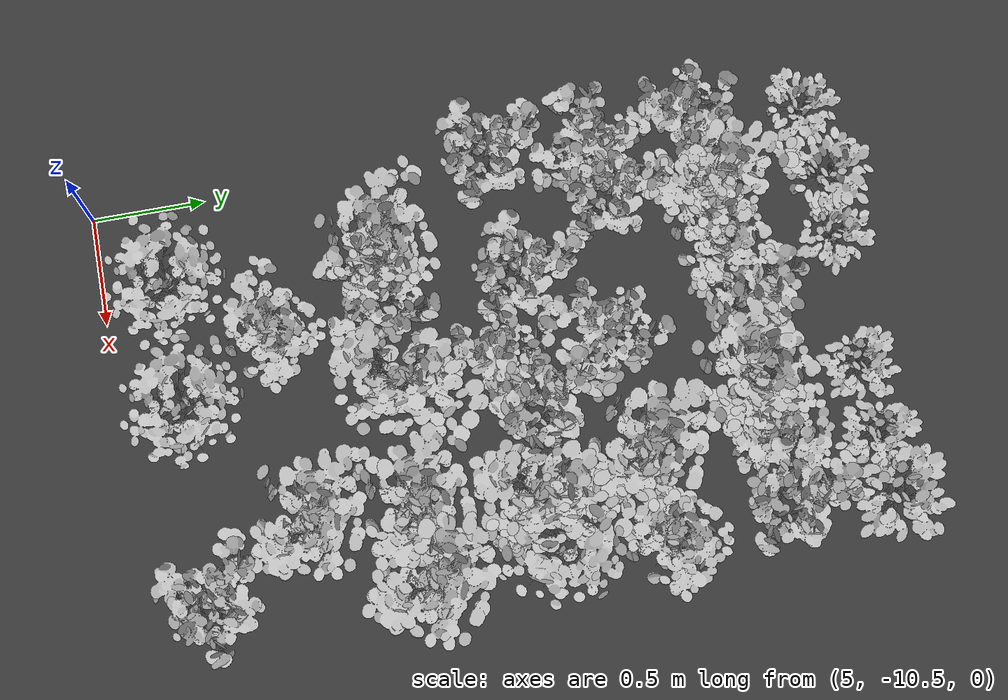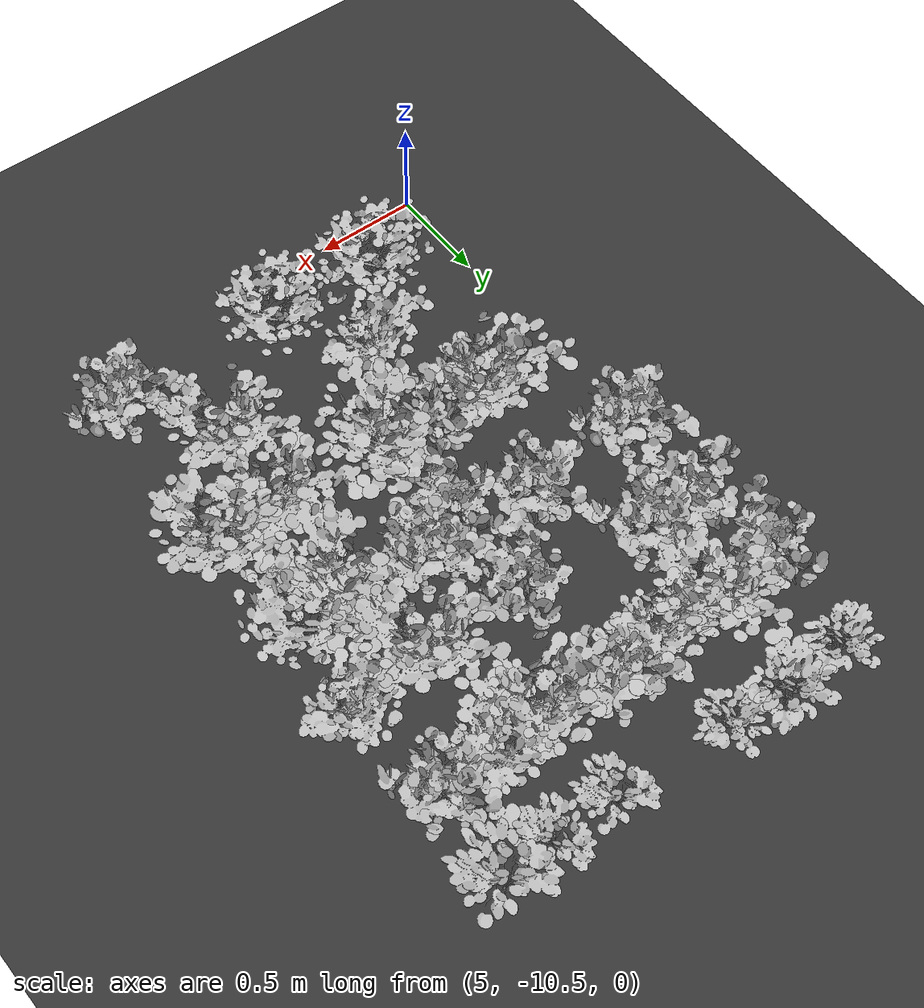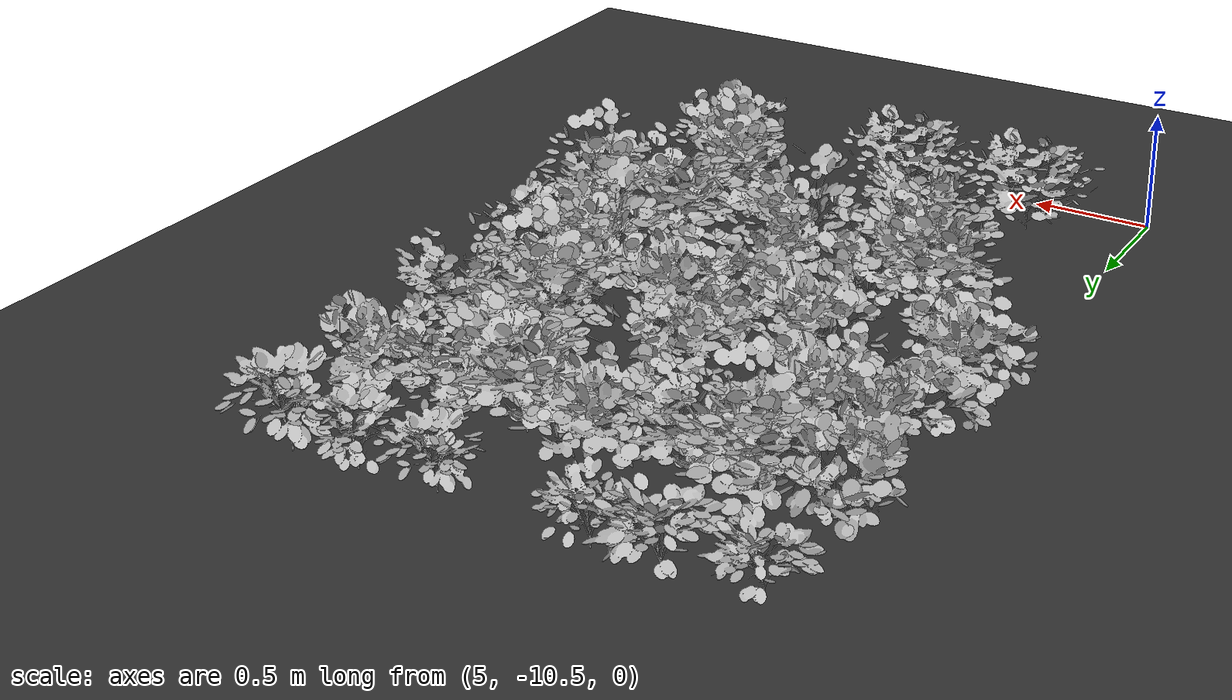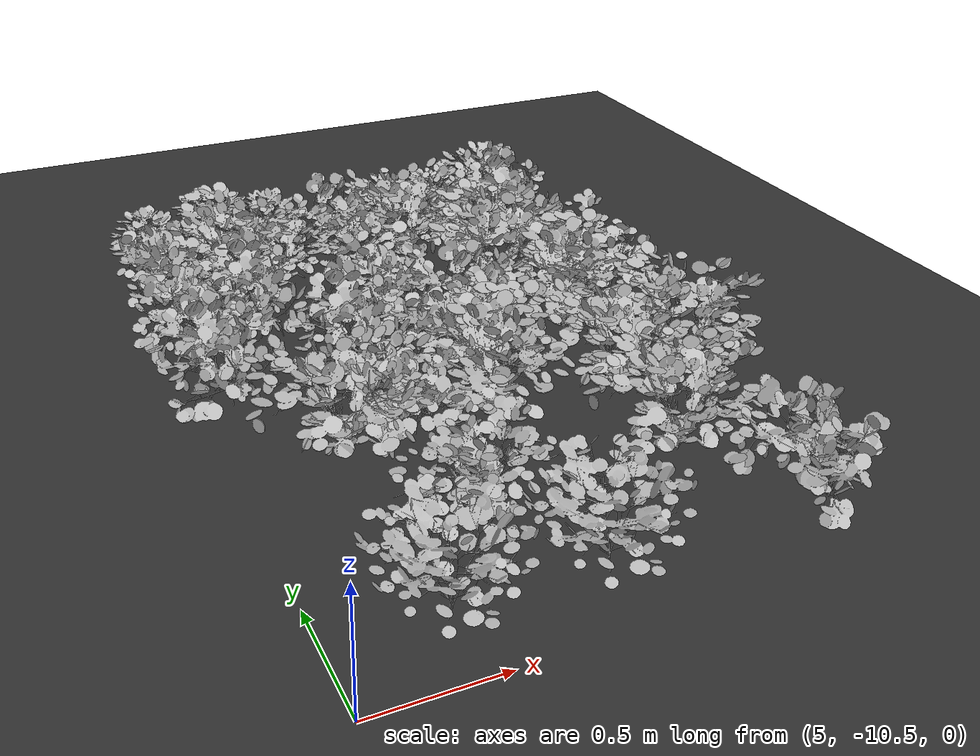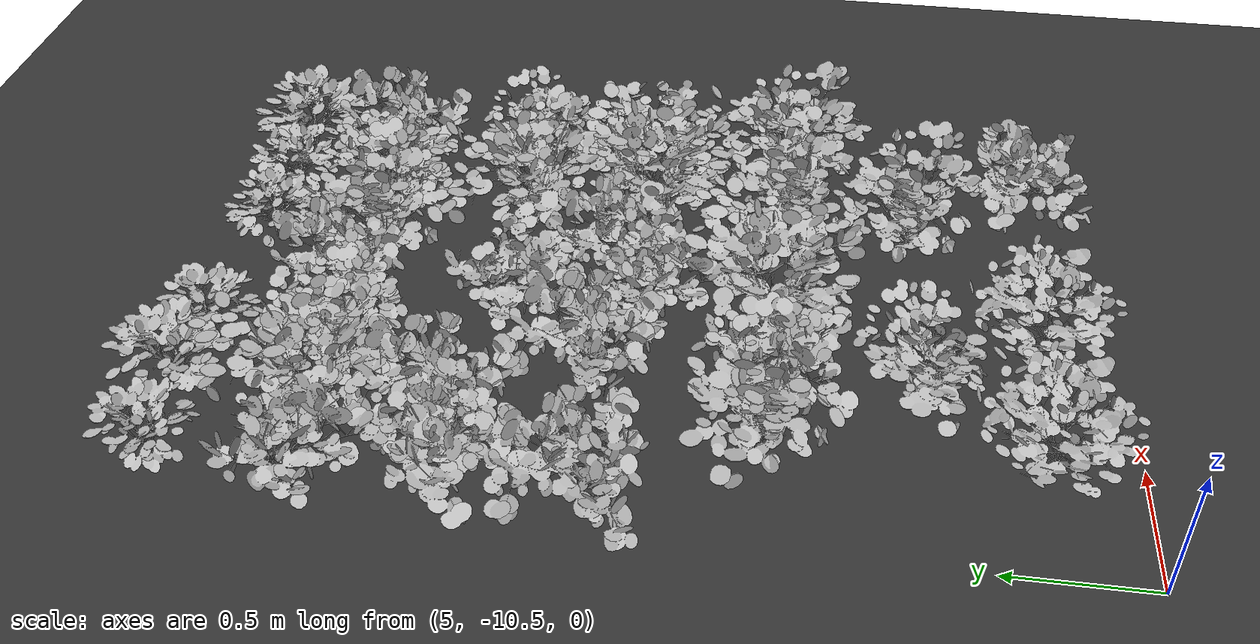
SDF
<sdf version="1.7">
 <world name="default">
  <model name="ground_plane">
   <static>1</static>
   <link name="link">
    <collision name="collision">
     <geometry><plane><normal>0 0 1</normal><size>100 100</size></plane></geometry>
     <surface>
      <contact><collide_bitmask>65535</collide_bitmask></contact>
      <friction><ode><mu>100</mu><mu2>50</mu2></ode></friction>
     </surface>
    </collision>
    <visual name="visual">
     <cast_shadows>0</cast_shadows>
     <geometry><plane><normal>0 0 1</normal><size>100 100</size></plane></geometry>
     <material>
      <ambient>0.2 0.2 0.2 1.0</ambient>
      <diffuse>0.2 0.2 0.2 1.0</diffuse>
      <specular>0.2 0.2 0.2 1.0</specular>
      <emissive>0.2 0.2 0.2 1.0</emissive>
     </material>
    </visual>
   </link>
  </model>
  <model name="ground">
   <pose>5 -0.5 0.01  3.141592654 0 0</pose>
   <static>true</static>
   <link name="body">
    <visual name="visual">
     <cast_shadows>0</cast_shadows>
     <geometry>
      <mesh><uri>file:///home/ifcosta/catkin_ws/src/cnn_line/worlds/models/ground.obj</uri></mesh>
     </geometry>
    </visual>
   </link>
  </model>
  <model name="plt_20017">
   <pose>5.09 -7.28 0.0143 0.0 0.0 -0.16303</pose>
   <static>true</static>
   <link name="body">
    <visual name="visual">
     <geometry>
      <mesh><uri>file:///home/ifcosta/catkin_ws/src/cnn_line/worlds/models/plant20.obj</uri></mesh>
     </geometry>
    </visual>
   </link>
  </model>
  <model name="plt_20018">
   <pose>5.43 -7.24 0.0139 0.0 0.0 1.0683</pose>
   <static>true</static>
   <link name="body">
    <visual name="visual">
     <geometry>
      <mesh><uri>file:///home/ifcosta/catkin_ws/src/cnn_line/worlds/models/plant21.obj</uri></mesh>
     </geometry>
    </visual>
   </link>
  </model>
  <model name="plt_30018">
   <pose>5.43 -10.2 0.0139 0.0 0.0 -0.18244</pose>
   <static>true</static>
   <link name="body">
    <visual name="visual">
     <geometry>
      <mesh><uri>file:///home/ifcosta/catkin_ws/src/cnn_line/worlds/models/plant35.obj</uri></mesh>
     </geometry>
    </visual>
   </link>
  </model>
  <model name="plt_20019">
   <pose>5.7 -7.26 0.0103 0.0 0.0 -0.6353</pose>
   <static>true</static>
   <link name="body">
    <visual name="visual">
     <geometry>
      <mesh><uri>file:///home/ifcosta/catkin_ws/src/cnn_line/worlds/models/plant20.obj</uri></mesh>
     </geometry>
    </visual>
   </link>
  </model>
  <model name="plt_30020">
   <pose>5.99 -10.2 0.0155 0.0 0.0 -0.10575</pose>
   <static>true</static>
   <link name="body">
    <visual name="visual">
     <geometry>
      <mesh><uri>file:///home/ifcosta/catkin_ws/src/cnn_line/worlds/models/plant35.obj</uri></mesh>
     </geometry>
    </visual>
   </link>
  </model>
  <model name="plt_20021">
   <pose>6.31 -7.28 0.0148 0.0 0.0 -1.3733</pose>
   <static>true</static>
   <link name="body">
    <visual name="visual">
     <geometry>
      <mesh><uri>file:///home/ifcosta/catkin_ws/src/cnn_line/worlds/models/plant20.obj</uri></mesh>
     </geometry>
    </visual>
   </link>
  </model>
  <model name="plt_20022">
   <pose>6.63 -7.27 0.0137 0.0 0.0 -1.9299</pose>
   <static>true</static>
   <link name="body">
    <visual name="visual">
     <geometry>
      <mesh><uri>file:///home/ifcosta/catkin_ws/src/cnn_line/worlds/models/plant20.obj</uri></mesh>
     </geometry>
    </visual>
   </link>
  </model>
  <model name="plt_20023">
   <pose>6.9 -7.25 0.0141 0.0 0.0 0.044499</pose>
   <static>true</static>
   <link name="body">
    <visual name="visual">
     <geometry>
      <mesh><uri>file:///home/ifcosta/catkin_ws/src/cnn_line/worlds/models/plant22.obj</uri></mesh>
     </geometry>
    </visual>
   </link>
  </model>
  <model name="plt_30023">
   <pose>6.9 -10.2 0.0141 0.0 0.0 0.03837</pose>
   <static>true</static>
   <link name="body">
    <visual name="visual">
     <geometry>
      <mesh><uri>file:///home/ifcosta/catkin_ws/src/cnn_line/worlds/models/plant33.obj</uri></mesh>
     </geometry>
    </visual>
   </link>
  </model>
  <model name="plt_30053">
   <pose>5.73 -9.78 0.0159 0.0 0.0 -0.35968</pose>
   <static>true</static>
   <link name="body">
    <visual name="visual">
     <geometry>
      <mesh><uri>file:///home/ifcosta/catkin_ws/src/cnn_line/worlds/models/plant31.obj</uri></mesh>
     </geometry>
    </visual>
   </link>
  </model>
  <model name="plt_30056">
   <pose>6.57 -9.73 0.0154 0.0 0.0 -0.071339</pose>
   <static>true</static>
   <link name="body">
    <visual name="visual">
     <geometry>
      <mesh><uri>file:///home/ifcosta/catkin_ws/src/cnn_line/worlds/models/plant36.obj</uri></mesh>
     </geometry>
    </visual>
   </link>
  </model>
  <model name="plt_30086">
   <pose>5.43 -9.25 0.0145 0.0 0.0 0.3714</pose>
   <static>true</static>
   <link name="body">
    <visual name="visual">
     <geometry>
      <mesh><uri>file:///home/ifcosta/catkin_ws/src/cnn_line/worlds/models/plant36.obj</uri></mesh>
     </geometry>
    </visual>
   </link>
  </model>
  <model name="plt_30087">
   <pose>5.71 -9.24 0.0154 0.0 0.0 1.2879</pose>
   <static>true</static>
   <link name="body">
    <visual name="visual">
     <geometry>
      <mesh><uri>file:///home/ifcosta/catkin_ws/src/cnn_line/worlds/models/plant33.obj</uri></mesh>
     </geometry>
    </visual>
   </link>
  </model>
  <model name="plt_30088">
   <pose>6.03 -9.25 0.0131 0.0 0.0 -2.0075</pose>
   <static>true</static>
   <link name="body">
    <visual name="visual">
     <geometry>
      <mesh><uri>file:///home/ifcosta/catkin_ws/src/cnn_line/worlds/models/plant30.obj</uri></mesh>
     </geometry>
    </visual>
   </link>
  </model>
  <model name="plt_30090">
   <pose>6.59 -9.28 0.0144 0.0 0.0 0.239</pose>
   <static>true</static>
   <link name="body">
    <visual name="visual">
     <geometry>
      <mesh><uri>file:///home/ifcosta/catkin_ws/src/cnn_line/worlds/models/plant36.obj</uri></mesh>
     </geometry>
    </visual>
   </link>
  </model>
  <model name="plt_30091">
   <pose>6.91 -9.25 0.0156 0.0 0.0 -1.0219</pose>
   <static>true</static>
   <link name="body">
    <visual name="visual">
     <geometry>
      <mesh><uri>file:///home/ifcosta/catkin_ws/src/cnn_line/worlds/models/plant30.obj</uri></mesh>
     </geometry>
    </visual>
   </link>
  </model>
  <model name="plt_30119">
   <pose>5.12 -8.76 0.0183 0.0 0.0 -0.43453</pose>
   <static>true</static>
   <link name="body">
    <visual name="visual">
     <geometry>
      <mesh><uri>file:///home/ifcosta/catkin_ws/src/cnn_line/worlds/models/plant33.obj</uri></mesh>
     </geometry>
    </visual>
   </link>
  </model>
  <model name="plt_30121">
   <pose>5.67 -8.72 0.0171 0.0 0.0 -0.76381</pose>
   <static>true</static>
   <link name="body">
    <visual name="visual">
     <geometry>
      <mesh><uri>file:///home/ifcosta/catkin_ws/src/cnn_line/worlds/models/plant33.obj</uri></mesh>
     </geometry>
    </visual>
   </link>
  </model>
  <model name="plt_30122">
   <pose>6.03 -8.74 0.0143 0.0 0.0 0.39181</pose>
   <static>true</static>
   <link name="body">
    <visual name="visual">
     <geometry>
      <mesh><uri>file:///home/ifcosta/catkin_ws/src/cnn_line/worlds/models/plant34.obj</uri></mesh>
     </geometry>
    </visual>
   </link>
  </model>
  <model name="plt_30123">
   <pose>6.3 -8.72 0.0143 0.0 0.0 -0.25647</pose>
   <static>true</static>
   <link name="body">
    <visual name="visual">
     <geometry>
      <mesh><uri>file:///home/ifcosta/catkin_ws/src/cnn_line/worlds/models/plant33.obj</uri></mesh>
     </geometry>
    </visual>
   </link>
  </model>
  <model name="plt_30124">
   <pose>6.63 -8.74 0.0152 0.0 0.0 -1.8786</pose>
   <static>true</static>
   <link name="body">
    <visual name="visual">
     <geometry>
      <mesh><uri>file:///home/ifcosta/catkin_ws/src/cnn_line/worlds/models/plant30.obj</uri></mesh>
     </geometry>
    </visual>
   </link>
  </model>
  <model name="plt_30125">
   <pose>6.84 -8.71 0.0144 0.0 0.0 -0.18988</pose>
   <static>true</static>
   <link name="body">
    <visual name="visual">
     <geometry>
      <mesh><uri>file:///home/ifcosta/catkin_ws/src/cnn_line/worlds/models/plant32.obj</uri></mesh>
     </geometry>
    </visual>
   </link>
  </model>
  <model name="plt_30153">
   <pose>5.19 -8.24 0.0147 0.0 0.0 -0.89869</pose>
   <static>true</static>
   <link name="body">
    <visual name="visual">
     <geometry>
      <mesh><uri>file:///home/ifcosta/catkin_ws/src/cnn_line/worlds/models/plant34.obj</uri></mesh>
     </geometry>
    </visual>
   </link>
  </model>
  <model name="plt_30154">
   <pose>5.38 -8.26 0.0161 0.0 0.0 -0.75548</pose>
   <static>true</static>
   <link name="body">
    <visual name="visual">
     <geometry>
      <mesh><uri>file:///home/ifcosta/catkin_ws/src/cnn_line/worlds/models/plant33.obj</uri></mesh>
     </geometry>
    </visual>
   </link>
  </model>
  <model name="plt_30156">
   <pose>6.03 -8.27 0.0135 0.0 0.0 -0.13493</pose>
   <static>true</static>
   <link name="body">
    <visual name="visual">
     <geometry>
      <mesh><uri>file:///home/ifcosta/catkin_ws/src/cnn_line/worlds/models/plant34.obj</uri></mesh>
     </geometry>
    </visual>
   </link>
  </model>
  <model name="plt_30158">
   <pose>6.53 -8.28 0.0191 0.0 0.0 -0.94199</pose>
   <static>true</static>
   <link name="body">
    <visual name="visual">
     <geometry>
      <mesh><uri>file:///home/ifcosta/catkin_ws/src/cnn_line/worlds/models/plant30.obj</uri></mesh>
     </geometry>
    </visual>
   </link>
  </model>
  <model name="plt_30159">
   <pose>6.92 -8.24 0.0172 0.0 0.0 -0.33744</pose>
   <static>true</static>
   <link name="body">
    <visual name="visual">
     <geometry>
      <mesh><uri>file:///home/ifcosta/catkin_ws/src/cnn_line/worlds/models/plant31.obj</uri></mesh>
     </geometry>
    </visual>
   </link>
  </model>
  <model name="plt_30187">
   <pose>5.07 -7.73 0.0161 0.0 0.0 2.1418</pose>
   <static>true</static>
   <link name="body">
    <visual name="visual">
     <geometry>
      <mesh><uri>file:///home/ifcosta/catkin_ws/src/cnn_line/worlds/models/plant33.obj</uri></mesh>
     </geometry>
    </visual>
   </link>
  </model>
  <model name="plt_30188">
   <pose>5.39 -7.75 0.0161 0.0 0.0 -0.56323</pose>
   <static>true</static>
   <link name="body">
    <visual name="visual">
     <geometry>
      <mesh><uri>file:///home/ifcosta/catkin_ws/src/cnn_line/worlds/models/plant36.obj</uri></mesh>
     </geometry>
    </visual>
   </link>
  </model>
  <model name="plt_30189">
   <pose>5.64 -7.77 0.0178 0.0 0.0 -0.85206</pose>
   <static>true</static>
   <link name="body">
    <visual name="visual">
     <geometry>
      <mesh><uri>file:///home/ifcosta/catkin_ws/src/cnn_line/worlds/models/plant31.obj</uri></mesh>
     </geometry>
    </visual>
   </link>
  </model>
  <model name="plt_30190">
   <pose>6.03 -7.74 0.0179 0.0 0.0 -0.2012</pose>
   <static>true</static>
   <link name="body">
    <visual name="visual">
     <geometry>
      <mesh><uri>file:///home/ifcosta/catkin_ws/src/cnn_line/worlds/models/plant33.obj</uri></mesh>
     </geometry>
    </visual>
   </link>
  </model>
  <model name="plt_30191">
   <pose>6.28 -7.75 0.0162 0.0 0.0 0.39576</pose>
   <static>true</static>
   <link name="body">
    <visual name="visual">
     <geometry>
      <mesh><uri>file:///home/ifcosta/catkin_ws/src/cnn_line/worlds/models/plant36.obj</uri></mesh>
     </geometry>
    </visual>
   </link>
  </model>
  <model name="plt_30192">
   <pose>6.57 -7.73 0.0154 0.0 0.0 0.54806</pose>
   <static>true</static>
   <link name="body">
    <visual name="visual">
     <geometry>
      <mesh><uri>file:///home/ifcosta/catkin_ws/src/cnn_line/worlds/models/plant31.obj</uri></mesh>
     </geometry>
    </visual>
   </link>
  </model>
  <model name="plt_30193">
   <pose>6.88 -7.76 0.0156 0.0 0.0 -0.71109</pose>
   <static>true</static>
   <link name="body">
    <visual name="visual">
     <geometry>
      <mesh><uri>file:///home/ifcosta/catkin_ws/src/cnn_line/worlds/models/plant33.obj</uri></mesh>
     </geometry>
    </visual>
   </link>
  </model>
 </world>
</sdf>
